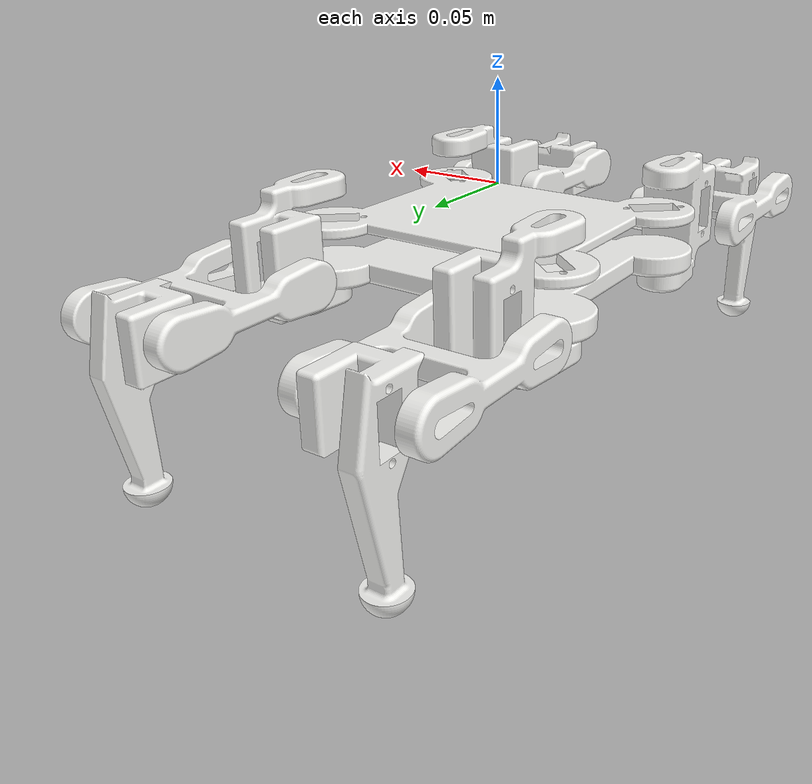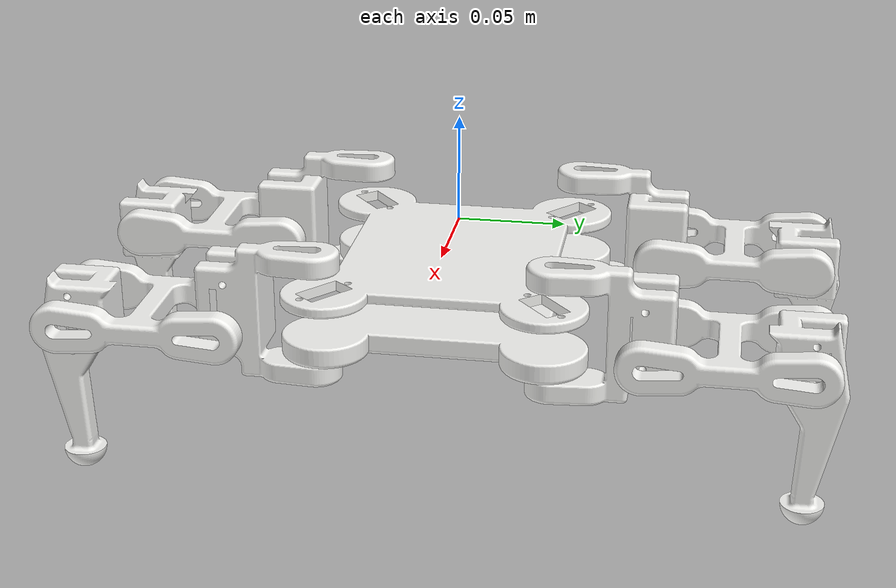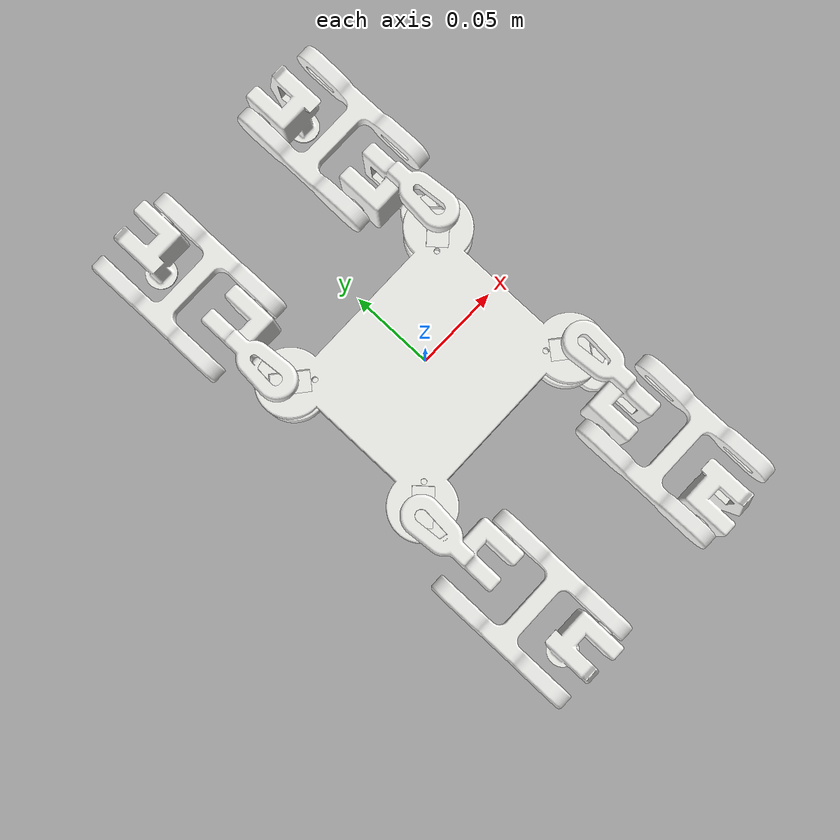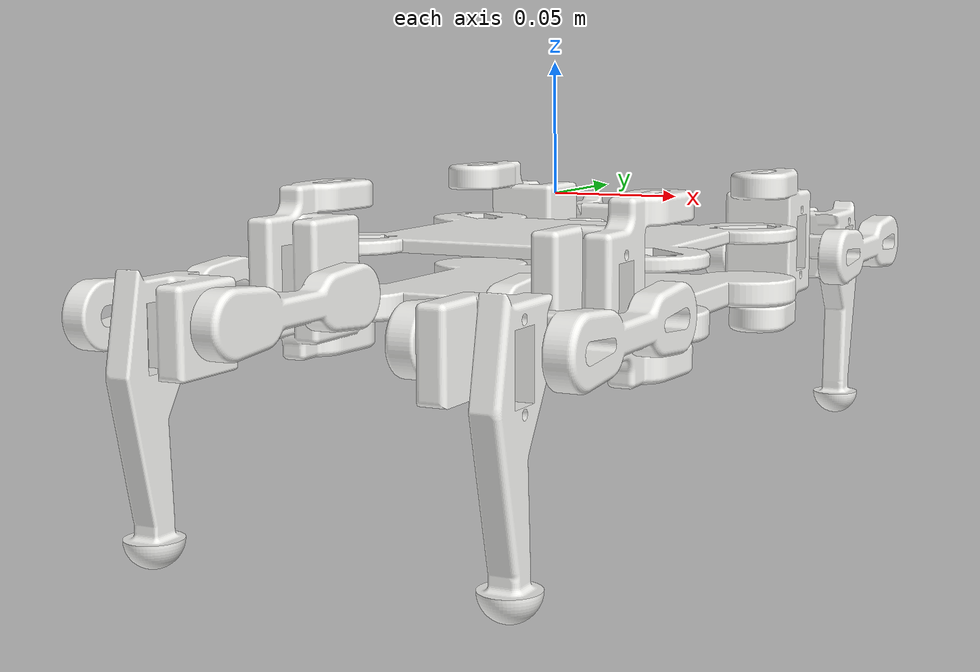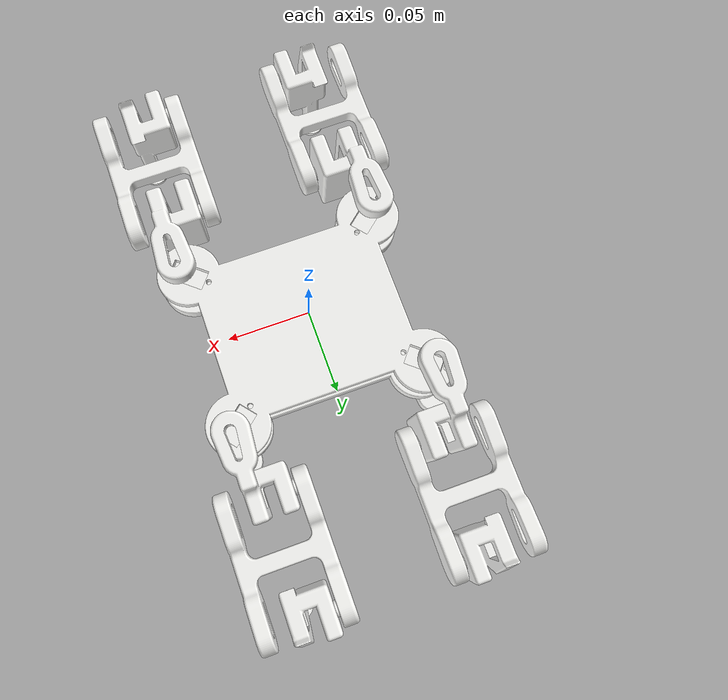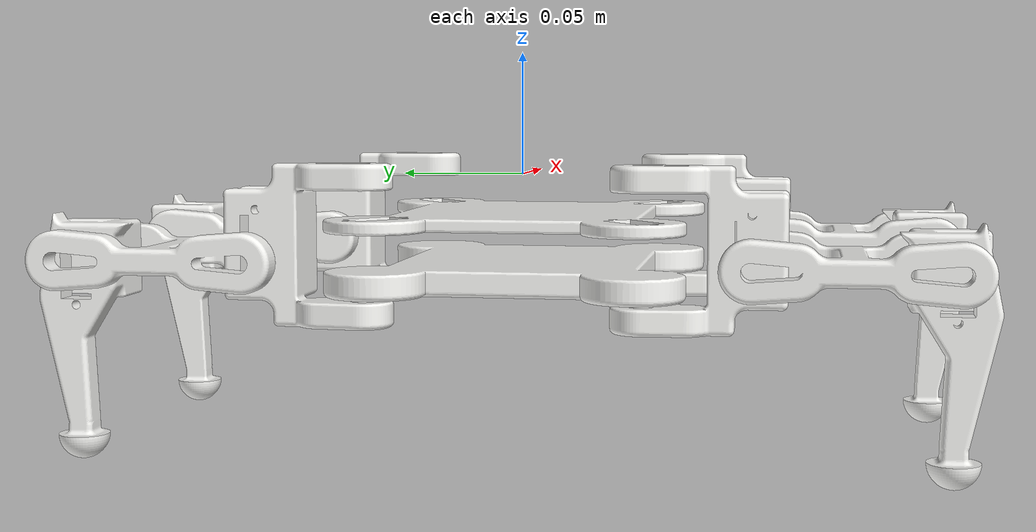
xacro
<?xml version="1.0" ?>
<robot name="quadruped" xmlns:xacro="http://www.ros.org/wiki/xacro">

<xacro:include filename="$(find quadruped_description)/urdf/materials.xacro" />
<xacro:include filename="$(find quadruped_description)/urdf/quadruped.trans" />
<link name="base_link">
  <inertial>
    <origin xyz="0.00163269153982156 -0.00182706423624738 -0.0400476186324271" rpy="0 0 0"/>
    <mass value="0.163845397110169"/>
    <inertia ixx="0.000213402020969405" iyy="0.000302434046961449" izz="0.000513114747208674" ixy="-1.201248361510656e-16" iyz="-4.96152710143796e-10" ixz="3.933621007048971e-18"/>
  </inertial>
  <visual>
    <origin xyz="0 0 0" rpy="0 0 0"/>
    <geometry>
      <mesh filename="package://quadruped_description/meshes/base_link.stl" scale="0.001 0.001 0.001"/>
    </geometry>
    <material name="abs_white"/>
  </visual>
  <collision>
    <origin xyz="0 0 0" rpy="0 0 0"/>
    <geometry>
      <mesh filename="package://quadruped_description/meshes/base_link.stl" scale="0.001 0.001 0.001"/>
    </geometry>
  </collision>
</link>

<link name="fr_hip">
  <inertial>
    <origin xyz="-0.006684922476042292 -0.02768076586198904 0.011946122181396599" rpy="0 0 0"/>
    <mass value="0.0441842954273049"/>
    <inertia ixx="2.88752105093281e-05" iyy="1.98454194982597e-05" izz="1.7068851480669e-05" ixy="-3.26156570682335e-06" iyz="9.43270807229662e-07" ixz="2.322956451452e-07"/>
  </inertial>
  <visual>
    <origin xyz="-0.065762 0.05514 0.038083" rpy="0 0 0"/>
    <geometry>
      <mesh filename="package://quadruped_description/meshes/fr_hip.stl" scale="0.001 0.001 0.001"/>
    </geometry>
    <material name="abs_white"/>
  </visual>
  <collision>
    <origin xyz="-0.065762 0.05514 0.038083" rpy="0 0 0"/>
    <geometry>
      <mesh filename="package://quadruped_description/meshes/fr_hip.stl" scale="0.001 0.001 0.001"/>
    </geometry>
  </collision>
</link>

<link name="fr_mid">
  <inertial>
    <origin xyz="0.024304344772111887 -0.03706526562805769 -3.759700298103241e-07" rpy="0 0 0"/>
    <mass value="0.0356783410342055"/>
    <inertia ixx="2.728231834984e-05" iyy="2.18994493548319e-05" izz="4.69872353001636e-05" ixy="-1.049260992761619e-12" iyz="-1.552309442012095e-13" ixz="2.183775350220879e-13"/>
  </inertial>
  <visual>
    <origin xyz="-0.035762 0.096481 0.030533" rpy="0 0 0"/>
    <geometry>
      <mesh filename="package://quadruped_description/meshes/fr_mid.stl" scale="0.001 0.001 0.001"/>
    </geometry>
    <material name="abs_white"/>
  </visual>
  <collision>
    <origin xyz="-0.035762 0.096481 0.030533" rpy="0 0 0"/>
    <geometry>
      <mesh filename="package://quadruped_description/meshes/fr_mid.stl" scale="0.001 0.001 0.001"/>
    </geometry>
  </collision>
</link>

<link name="fr_end">
  <inertial>
    <origin xyz="0.024862132061746436 0.0011902105874371793 -0.018006904132433724" rpy="0 0 0"/>
    <mass value="0.0299344035282369"/>
    <inertia ixx="2.21448121741883e-05" iyy="2.26143404728166e-05" izz="4.64804114255887e-06" ixy="2.65916666229303e-07" iyz="-1.3797819782097e-06" ixz="3.44128407687838e-06"/>
  </inertial>
  <visual>
    <origin xyz="-0.033762 0.170612 0.030533" rpy="0 0 0"/>
    <geometry>
      <mesh filename="package://quadruped_description/meshes/fr_end.stl" scale="0.001 0.001 0.001"/>
    </geometry>
    <material name="abs_white"/>
  </visual>
  <collision>
    <origin xyz="-0.033762 0.170612 0.030533" rpy="0 0 0"/>
    <geometry>
      <mesh filename="package://quadruped_description/meshes/fr_end.stl" scale="0.001 0.001 0.001"/>
    </geometry>
  </collision>
</link>

<link name="br_hip">
  <inertial>
    <origin xyz="0.0066842790868109 -0.027680768544805327 0.01194612303749059" rpy="0 0 0"/>
    <mass value="0.0441843988105653"/>
    <inertia ixx="2.88752420285983e-05" iyy="1.98454377415394e-05" izz="1.70688764859079e-05" ixy="3.26158171270284e-06" iyz="9.43253148853897e-07" ixz="-2.32252787079728e-07"/>
  </inertial>
  <visual>
    <origin xyz="0.062496 0.05514 0.038083" rpy="0 0 0"/>
    <geometry>
      <mesh filename="package://quadruped_description/meshes/br_hip.stl" scale="0.001 0.001 0.001"/>
    </geometry>
    <material name="abs_white"/>
  </visual>
  <collision>
    <origin xyz="0.062496 0.05514 0.038083" rpy="0 0 0"/>
    <geometry>
      <mesh filename="package://quadruped_description/meshes/br_hip.stl" scale="0.001 0.001 0.001"/>
    </geometry>
  </collision>
</link>

<link name="br_mid">
  <inertial>
    <origin xyz="-0.024304961674508505 -0.03706526545515594 -3.7542838836335246e-07" rpy="0 0 0"/>
    <mass value="0.0356783428325288"/>
    <inertia ixx="2.72823189324833e-05" iyy="2.18994500731729e-05" izz="4.69872365275284e-05" ixy="1.239602550381219e-12" iyz="1.859741473233395e-13" ixz="2.841820474688145e-13"/>
  </inertial>
  <visual>
    <origin xyz="0.032496 0.096481 0.030533" rpy="0 0 0"/>
    <geometry>
      <mesh filename="package://quadruped_description/meshes/br_mid.stl" scale="0.001 0.001 0.001"/>
    </geometry>
    <material name="abs_white"/>
  </visual>
  <collision>
    <origin xyz="0.032496 0.096481 0.030533" rpy="0 0 0"/>
    <geometry>
      <mesh filename="package://quadruped_description/meshes/br_mid.stl" scale="0.001 0.001 0.001"/>
    </geometry>
  </collision>
</link>

<link name="br_end">
  <inertial>
    <origin xyz="-0.024862748982052024 0.0011902105873204671 -0.018006904132492566" rpy="0 0 0"/>
    <mass value="0.0299344035279718"/>
    <inertia ixx="2.21448121741301e-05" iyy="2.26143404728e-05" izz="4.6480411425077e-06" ixy="-2.65916666243615e-07" iyz="-1.37978197818633e-06" ixz="-3.44128407688441e-06"/>
  </inertial>
  <visual>
    <origin xyz="0.030496 0.170612 0.030533" rpy="0 0 0"/>
    <geometry>
      <mesh filename="package://quadruped_description/meshes/br_end.stl" scale="0.001 0.001 0.001"/>
    </geometry>
    <material name="abs_white"/>
  </visual>
  <collision>
    <origin xyz="0.030496 0.170612 0.030533" rpy="0 0 0"/>
    <geometry>
      <mesh filename="package://quadruped_description/meshes/br_end.stl" scale="0.001 0.001 0.001"/>
    </geometry>
  </collision>
</link>

<link name="fl_hip">
  <inertial>
    <origin xyz="-0.006684896007154356 0.027679998216628247 0.01194612303748923" rpy="0 0 0"/>
    <mass value="0.0441843988105653"/>
    <inertia ixx="2.88752420285979e-05" iyy="1.98454377415393e-05" izz="1.70688764859077e-05" ixy="3.26158171270289e-06" iyz="-9.43253148853613e-07" ixz="2.32252787080799e-07"/>
  </inertial>
  <visual>
    <origin xyz="-0.065762 -0.051742 0.038083" rpy="0 0 0"/>
    <geometry>
      <mesh filename="package://quadruped_description/meshes/fl_hip.stl" scale="0.001 0.001 0.001"/>
    </geometry>
    <material name="abs_white"/>
  </visual>
  <collision>
    <origin xyz="-0.065762 -0.051742 0.038083" rpy="0 0 0"/>
    <geometry>
      <mesh filename="package://quadruped_description/meshes/fl_hip.stl" scale="0.001 0.001 0.001"/>
    </geometry>
  </collision>
</link>

<link name="fl_mid">
  <inertial>
    <origin xyz="0.024304344754165617 0.03706549512697854 -3.754283903166511e-07" rpy="0 0 0"/>
    <mass value="0.0356783428325288"/>
    <inertia ixx="2.72823189324821e-05" iyy="2.18994500731717e-05" izz="4.69872365275285e-05" ixy="1.239603743003609e-12" iyz="-1.859737949576334e-13" ixz="-2.841823727294662e-13"/>
  </inertial>
  <visual>
    <origin xyz="-0.035762 -0.093082 0.030533" rpy="0 0 0"/>
    <geometry>
      <mesh filename="package://quadruped_description/meshes/fl_mid.stl" scale="0.001 0.001 0.001"/>
    </geometry>
    <material name="abs_white"/>
  </visual>
  <collision>
    <origin xyz="-0.035762 -0.093082 0.030533" rpy="0 0 0"/>
    <geometry>
      <mesh filename="package://quadruped_description/meshes/fl_mid.stl" scale="0.001 0.001 0.001"/>
    </geometry>
  </collision>
</link>

<link name="fl_end">
  <inertial>
    <origin xyz="0.02486213206171041 -0.0011899809154980734 -0.01800690413249514" rpy="0 0 0"/>
    <mass value="0.0299344035279718"/>
    <inertia ixx="2.21448121741299e-05" iyy="2.26143404727999e-05" izz="4.64804114250835e-06" ixy="-2.65916666243615e-07" iyz="1.37978197818625e-06" ixz="3.4412840768857e-06"/>
  </inertial>
  <visual>
    <origin xyz="-0.033762 -0.167213 0.030533" rpy="0 0 0"/>
    <geometry>
      <mesh filename="package://quadruped_description/meshes/fl_end.stl" scale="0.001 0.001 0.001"/>
    </geometry>
    <material name="abs_white"/>
  </visual>
  <collision>
    <origin xyz="-0.033762 -0.167213 0.030533" rpy="0 0 0"/>
    <geometry>
      <mesh filename="package://quadruped_description/meshes/fl_end.stl" scale="0.001 0.001 0.001"/>
    </geometry>
  </collision>
</link>

<link name="bl_hip">
  <inertial>
    <origin xyz="0.0066843055556989606 0.027679995533813263 0.011946122181395926" rpy="0 0 0"/>
    <mass value="0.0441842954273049"/>
    <inertia ixx="2.88752105093284e-05" iyy="1.98454194982597e-05" izz="1.70688514806691e-05" ixy="-3.26156570682338e-06" iyz="-9.43270807229974e-07" ixz="-2.32295645144034e-07"/>
  </inertial>
  <visual>
    <origin xyz="0.062496 -0.051742 0.038083" rpy="0 0 0"/>
    <geometry>
      <mesh filename="package://quadruped_description/meshes/bl_hip.stl" scale="0.001 0.001 0.001"/>
    </geometry>
    <material name="abs_white"/>
  </visual>
  <collision>
    <origin xyz="0.062496 -0.051742 0.038083" rpy="0 0 0"/>
    <geometry>
      <mesh filename="package://quadruped_description/meshes/bl_hip.stl" scale="0.001 0.001 0.001"/>
    </geometry>
  </collision>
</link>

<link name="bl_mid">
  <inertial>
    <origin xyz="-0.0243049616924549 0.037065495299881235 -3.7597003122238903e-07" rpy="0 0 0"/>
    <mass value="0.0356783410342055"/>
    <inertia ixx="2.72823183498413e-05" iyy="2.18994493548331e-05" izz="4.69872353001631e-05" ixy="-1.049259854349338e-12" iyz="1.552315134073501e-13" ixz="-2.183779280453754e-13"/>
  </inertial>
  <visual>
    <origin xyz="0.032496 -0.093082 0.030533" rpy="0 0 0"/>
    <geometry>
      <mesh filename="package://quadruped_description/meshes/bl_mid.stl" scale="0.001 0.001 0.001"/>
    </geometry>
    <material name="abs_white"/>
  </visual>
  <collision>
    <origin xyz="0.032496 -0.093082 0.030533" rpy="0 0 0"/>
    <geometry>
      <mesh filename="package://quadruped_description/meshes/bl_mid.stl" scale="0.001 0.001 0.001"/>
    </geometry>
  </collision>
</link>

<link name="bl_end">
  <inertial>
    <origin xyz="-0.024862748982088245 -0.0011899809156137864 -0.01800690413243548" rpy="0 0 0"/>
    <mass value="0.0299344035282369"/>
    <inertia ixx="2.21448121741886e-05" iyy="2.26143404728166e-05" izz="4.64804114255844e-06" ixy="2.65916666229249e-07" iyz="1.37978197820959e-06" ixz="-3.44128407687709e-06"/>
  </inertial>
  <visual>
    <origin xyz="0.030496 -0.167213 0.030533" rpy="0 0 0"/>
    <geometry>
      <mesh filename="package://quadruped_description/meshes/bl_end.stl" scale="0.001 0.001 0.001"/>
    </geometry>
    <material name="abs_white"/>
  </visual>
  <collision>
    <origin xyz="0.030496 -0.167213 0.030533" rpy="0 0 0"/>
    <geometry>
      <mesh filename="package://quadruped_description/meshes/bl_end.stl" scale="0.001 0.001 0.001"/>
    </geometry>
  </collision>
</link>

<link name="base_upper">
  <inertial>
    <origin xyz="-3.090257922487485e-07 -0.00013773495515434606 0.01749907816124257" rpy="0 0 0"/>
    <mass value="0.076748693848984"/>
    <inertia ixx="9.35094400270094e-05" iyy="0.00013240874772986" izz="0.000225600158100052" ixy="-2.160999124436590e-12" iyz="-2.08548873514437e-09" ixz="-1.171211277240609e-13"/>
  </inertial>
  <visual>
    <origin xyz="-0.001633 0.001825 0.035083" rpy="0 0 0"/>
    <geometry>
      <mesh filename="package://quadruped_description/meshes/base_upper.stl" scale="0.001 0.001 0.001"/>
    </geometry>
    <material name="abs_white"/>
  </visual>
  <collision>
    <origin xyz="-0.001633 0.001825 0.035083" rpy="0 0 0"/>
    <geometry>
      <mesh filename="package://quadruped_description/meshes/base_upper.stl" scale="0.001 0.001 0.001"/>
    </geometry>
  </collision>
</link>

<joint name="frontRightHip" type="revolute">
  <origin xyz="0.065762 -0.05514 -0.038083" rpy="0 0 0"/>
  <parent link="base_link"/>
  <child link="fr_hip"/>
  <axis xyz="-0.0 -0.0 -1.0"/>
  <limit upper="0.785398" lower="-2.356194" effort="100" velocity="100"/>
</joint>

<joint name="frontRightMid" type="revolute">
  <origin xyz="-0.03 -0.041341 0.00755" rpy="0 0 0"/>
  <parent link="fr_hip"/>
  <child link="fr_mid"/>
  <axis xyz="-1.0 0.0 -0.0"/>
  <limit upper="1.570796" lower="-1.570796" effort="100" velocity="100"/>
</joint>

<joint name="frontRightEnd" type="revolute">
  <origin xyz="-0.002 -0.074131 0.0" rpy="0 0 0"/>
  <parent link="fr_mid"/>
  <child link="fr_end"/>
  <axis xyz="1.0 0.0 0.0"/>
  <limit upper="0.0" lower="-3.141593" effort="100" velocity="100"/>
</joint>

<joint name="backRightHip" type="revolute">
  <origin xyz="-0.062496 -0.05514 -0.038083" rpy="0 0 0"/>
  <parent link="base_link"/>
  <child link="br_hip"/>
  <axis xyz="-0.0 -0.0 -1.0"/>
  <limit upper="2.356194" lower="-0.785398" effort="100" velocity="100"/>
</joint>

<joint name="backRightMid" type="revolute">
  <origin xyz="0.03 -0.041341 0.00755" rpy="0 0 0"/>
  <parent link="br_hip"/>
  <child link="br_mid"/>
  <axis xyz="1.0 -0.0 0.0"/>
  <limit upper="1.570796" lower="-1.570796" effort="100" velocity="100"/>
</joint>

<joint name="backRightEnd" type="revolute">
  <origin xyz="0.002 -0.074131 0.0" rpy="0 0 0"/>
  <parent link="br_mid"/>
  <child link="br_end"/>
  <axis xyz="-1.0 0.0 -0.0"/>
  <limit upper="3.141593" lower="0.0" effort="100" velocity="100"/>
</joint>

<joint name="frontLeftHip" type="revolute">
  <origin xyz="0.065762 0.051742 -0.038083" rpy="0 0 0"/>
  <parent link="base_link"/>
  <child link="fl_hip"/>
  <axis xyz="-0.0 -0.0 -1.0"/>
  <limit upper="2.356194" lower="-0.785398" effort="100" velocity="100"/>
</joint>

<joint name="frontLeftMid" type="revolute">
  <origin xyz="-0.03 0.04134 0.00755" rpy="0 0 0"/>
  <parent link="fl_hip"/>
  <child link="fl_mid"/>
  <axis xyz="-1.0 0.0 -0.0"/>
  <limit upper="1.570796" lower="-1.570796" effort="100" velocity="100"/>
</joint>

<joint name="frontLeftEnd" type="revolute">
  <origin xyz="-0.002 0.074131 0.0" rpy="0 0 0"/>
  <parent link="fl_mid"/>
  <child link="fl_end"/>
  <axis xyz="1.0 -0.0 0.0"/>
  <limit upper="3.141593" lower="0.0" effort="100" velocity="100"/>
</joint>

<joint name="backLeftHip" type="revolute">
  <origin xyz="-0.062496 0.051742 -0.038083" rpy="0 0 0"/>
  <parent link="base_link"/>
  <child link="bl_hip"/>
  <axis xyz="-0.0 -0.0 -1.0"/>
  <limit upper="0.785398" lower="-2.356194" effort="100" velocity="100"/>
</joint>

<joint name="backLeftMid" type="revolute">
  <origin xyz="0.03 0.04134 0.00755" rpy="0 0 0"/>
  <parent link="bl_hip"/>
  <child link="bl_mid"/>
  <axis xyz="1.0 -0.0 0.0"/>
  <limit upper="1.570796" lower="-1.570796" effort="100" velocity="100"/>
</joint>

<joint name="backLeftEnd" type="revolute">
  <origin xyz="0.002 0.074131 0.0" rpy="0 0 0"/>
  <parent link="bl_mid"/>
  <child link="bl_end"/>
  <axis xyz="-1.0 -0.0 -0.0"/>
  <limit upper="0.0" lower="-3.141593" effort="100" velocity="100"/>
</joint>

<joint name="Rigid 14" type="fixed">
  <origin xyz="0.001633 -0.001825 -0.035083" rpy="0 0 0"/>
  <parent link="base_link"/>
  <child link="base_upper"/>
</joint>

</robot>

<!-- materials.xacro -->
<robot name="quadruped" xmlns:xacro="http://www.ros.org/wiki/xacro" >

<material name="silver_default">
  <color rgba="0.700 0.700 0.700 1.000"/>
</material>
<material name="abs_white">
  <color rgba="0.9647058823529412 0.9647058823529412 0.9529411764705882 1.0"/>
</material>

</robot>
